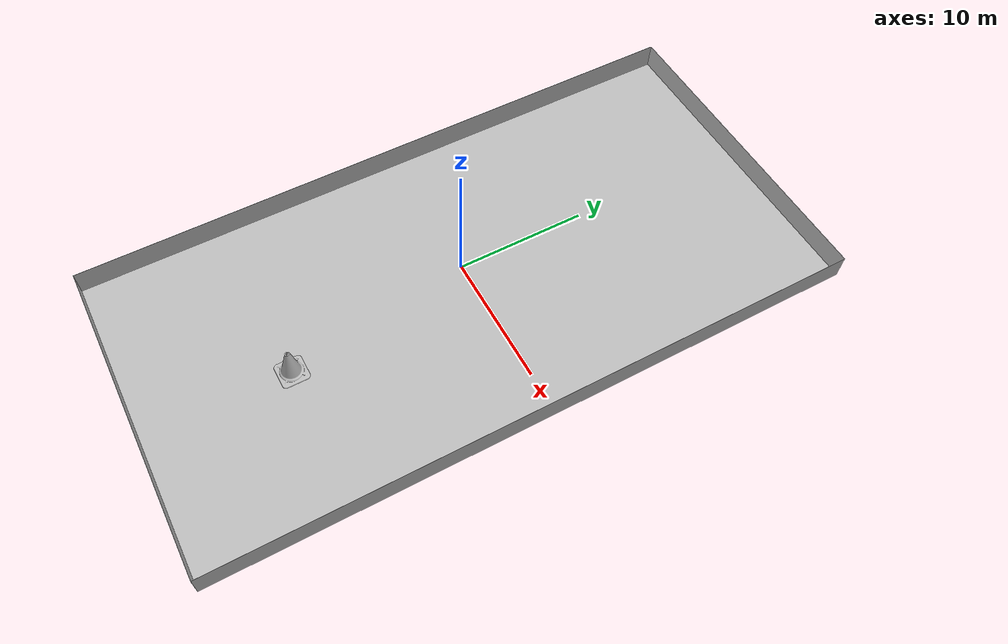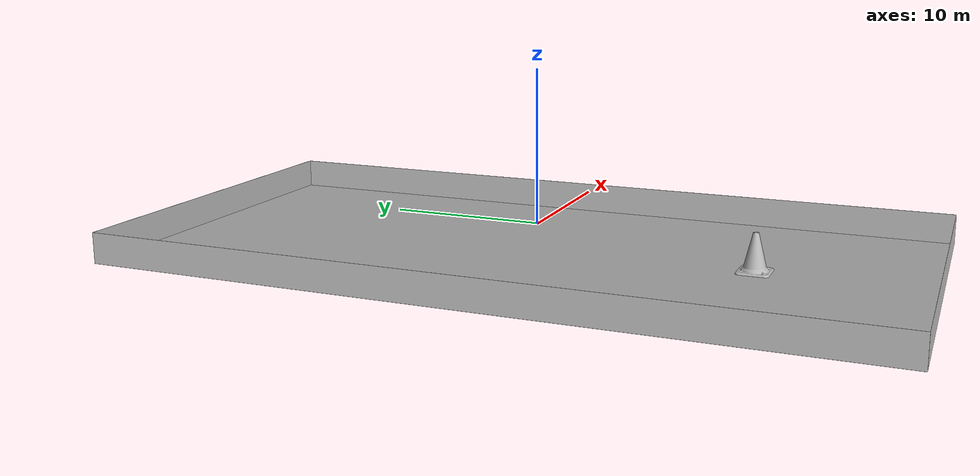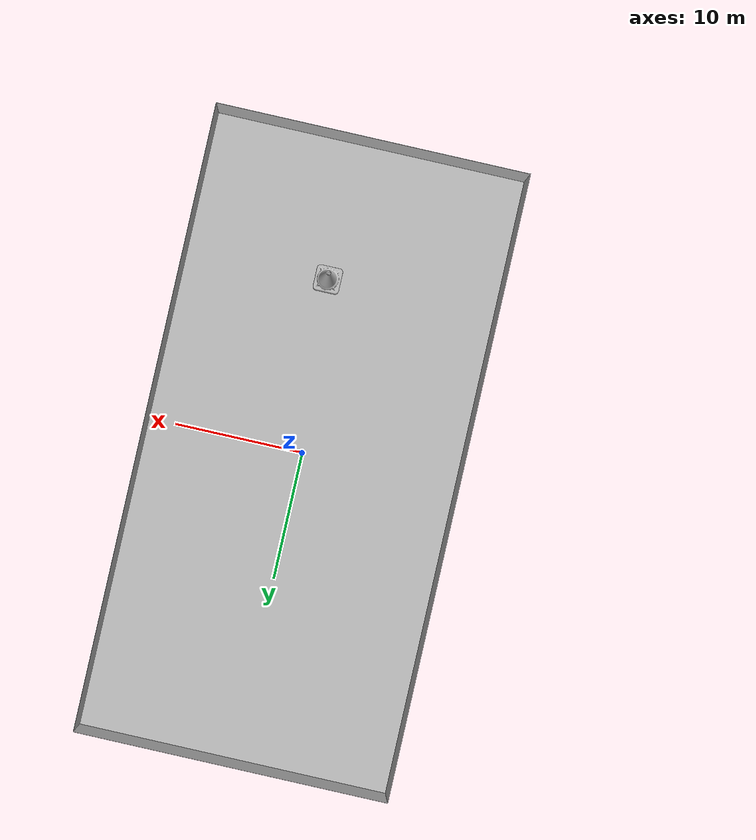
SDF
<sdf version="1.6">
 <world name="swimming_pool">
  <physics name="default_physics" default="true" type="ode">
   <max_step_size>0.002</max_step_size>
   <real_time_factor>1</real_time_factor>
   <real_time_update_rate>500</real_time_update_rate>
  </physics>
  <scene>
   <ambient>0.01 0.01 0.01 1.0</ambient>
   <sky><clouds><speed>12</speed></clouds></sky>
   <shadows>1</shadows>
  </scene>
  <light type="directional" name="sun1">
   <pose>20 0 100 0 0 0</pose>
   <diffuse>1 1 1 1</diffuse>
   <specular>1 1 1 1</specular>
   <direction>0.3 0.3 -1</direction>
   <cast_shadows>false</cast_shadows>
  </light>
  <light type="directional" name="sun_diffuse">
   <pose>-20 0 -100 0 0 0</pose>
   <diffuse>0.46 0.46 0.46 1</diffuse>
   <specular>0 0 0 1</specular>
   <direction>-0.3 -0.3 -1</direction>
   <cast_shadows>false</cast_shadows>
  </light>
  <light name="q_gate_focus_1" type="point">
   <pose>16.343 -16.9786 1 0 -0 0</pose>
   <diffuse>0.5 0.5 0.5 1</diffuse>
   <specular>0.1 0.1 0.1 1</specular>
   <attenuation>
    <range>20</range>
    <constant>0.5</constant>
    <linear>0.01</linear>
    <quadratic>0.001</quadratic>
   </attenuation>
   <cast_shadows>0</cast_shadows>
   <direction>0 0 -1</direction>
  </light>
  <light name="q_gate_focus_2" type="point">
   <pose>10.5076 -15.5392 1 0 -0 0</pose>
   <diffuse>0.5 0.5 0.5 1</diffuse>
   <specular>0.1 0.1 0.1 1</specular>
   <attenuation>
    <range>20</range>
    <constant>0.5</constant>
    <linear>0.01</linear>
    <quadratic>0.001</quadratic>
   </attenuation>
   <cast_shadows>0</cast_shadows>
   <direction>0 0 -1</direction>
  </light>
  <light name="gate_focus_1" type="point">
   <pose>11.1512 9.32795 1 0 -0 0</pose>
   <diffuse>0.5 0.5 0.5 1</diffuse>
   <specular>0.1 0.1 0.1 1</specular>
   <attenuation>
    <range>20</range>
    <constant>0.5</constant>
    <linear>0.01</linear>
    <quadratic>0.001</quadratic>
   </attenuation>
   <cast_shadows>0</cast_shadows>
   <direction>0 0 -1</direction>
  </light>
  <light name="gate_focus_2" type="point">
   <pose>11.0884 8.42621 1 0 -0 0</pose>
   <diffuse>0.5 0.5 0.5 1</diffuse>
   <specular>0.1 0.1 0.1 1</specular>
   <attenuation>
    <range>20</range>
    <constant>0.5</constant>
    <linear>0.01</linear>
    <quadratic>0.001</quadratic>
   </attenuation>
   <cast_shadows>0</cast_shadows>
   <direction>0 0 -1</direction>
  </light>
  <light name="gate_focus_3" type="point">
   <pose>3.57644 5.66953 1 0 -0 0</pose>
   <diffuse>0.5 0.5 0.5 1</diffuse>
   <specular>0.1 0.1 0.1 1</specular>
   <attenuation>
    <range>20</range>
    <constant>0.5</constant>
    <linear>0.01</linear>
    <quadratic>0.001</quadratic>
   </attenuation>
   <cast_shadows>0</cast_shadows>
   <direction>0 0 -1</direction>
  </light>
  <light name="mat_focus_0" type="point">
   <pose>-13.0246 -1.13836 1 0 -0 0</pose>
   <diffuse>0.5 0.5 0.5 1</diffuse>
   <specular>0.1 0.1 0.1 1</specular>
   <attenuation>
    <range>20</range>
    <constant>0.5</constant>
    <linear>0.01</linear>
    <quadratic>0.001</quadratic>
   </attenuation>
   <cast_shadows>0</cast_shadows>
   <direction>0 0 -1</direction>
  </light>
  <light name="mat_focus_1" type="point">
   <pose>-13.2723 -1.55147 1 0 -0 0</pose>
   <diffuse>0.5 0.5 0.5 1</diffuse>
   <specular>0.1 0.1 0.1 1</specular>
   <attenuation>
    <range>20</range>
    <constant>0.5</constant>
    <linear>0.01</linear>
    <quadratic>0.001</quadratic>
   </attenuation>
   <cast_shadows>0</cast_shadows>
   <direction>0 0 -1</direction>
  </light>
  <light name="mat_focus_2" type="point">
   <pose>-12.6848 1.07085 1 0 -0 0</pose>
   <diffuse>0.5 0.5 0.5 1</diffuse>
   <specular>0.1 0.1 0.1 1</specular>
   <attenuation>
    <range>20</range>
    <constant>0.5</constant>
    <linear>0.01</linear>
    <quadratic>0.001</quadratic>
   </attenuation>
   <cast_shadows>0</cast_shadows>
   <direction>0 0 -1</direction>
  </light>
  <include><uri>model://swimming_pool</uri></include>
  <include><uri>model://traffic_cone</uri><pose>0 -15 -2 0 0 0</pose></include>
  <plugin name="freefloating_gazebo_fluid" filename="libfreefloating_gazebo_fluid.so">
   <descriptionParam>robot_description</descriptionParam>
   <fluidTopic>current</fluidTopic>
   <alwaysOn>true</alwaysOn>
   <surface>0 0 0</surface>
   <updateRate>.001</updateRate>
  </plugin>
 </world>
</sdf>

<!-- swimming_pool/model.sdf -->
<sdf version="1.6">
    <model name='swimming_pool'>
      <static>1</static>
      <link name='swimming_pool_base'>
        <visual name='pool_floor'>
          <cast_shadows>1</cast_shadows>
          <pose frame=''>0 0 -2.01 0 -0 0</pose>
          <geometry>
            <box>
              <size>25 50 0.01</size>
            </box>
          </geometry>
          <material>
            <script>
              <uri>file://models/swimming_pool/materials/scripts/swimming_pool.material</uri>
              <name>swimming_pool/floor_sun</name>
            </script>
            <emissive>0.6 0.6 0.6 1</emissive>
          </material>
        </visual>
        <collision name='pool_floor'>
          <pose frame=''>0 0 -2.01 0 -0 0</pose>
          <geometry>
            <box>
              <size>25 50 0.01</size>
            </box>
          </geometry>
          <max_contacts>1000</max_contacts>
          <surface>
            <contact>
              <ode/>
            </contact>
            <bounce/>
            <friction>
              <torsional>
                <ode/>
              </torsional>
              <ode/>
            </friction>
          </surface>
        </collision>
       <self_collide>0</self_collide>
        <enable_wind>0</enable_wind>
        <kinematic>0</kinematic>
      </link>

      <link name='north_link'>
		<visual name='north'>
			<pose>12.5 0 -1 0 -1.57079 0</pose>
          <geometry>
            <box>
              <size>2.01 50 0.01</size>
            </box>
          </geometry>
          <material>
            <script>
              <uri>file://models/swimming_pool/materials/scripts/swimming_pool.material</uri>
              <name>swimming_pool/wall</name>
            </script>
            <emissive>0.6 0.6 0.6 1</emissive>
          </material>
         </visual>
          <collision name='north'>
			  <pose>12.5 0 -1 0 -1.57079 0</pose>
          <geometry>
            <box>
              <size>2.01 50 0.01</size>
            </box>
          </geometry>
          <max_contacts>40</max_contacts>
          <surface>
            <contact>
              <ode/>
            </contact>
            <bounce/>
            <friction>
              <torsional>
                <ode/>
              </torsional>
              <ode/>
            </friction>
          </surface>
        </collision>
          <self_collide>0</self_collide>
          <enable_wind>0</enable_wind>
          <kinematic>0</kinematic>
        </link>
      <joint type="fixed" name="north_link_joint">
        <child>north_link</child>
        <parent>swimming_pool_base</parent>
      </joint>

      <link name='south_link'>
		<visual name='south'>
			<pose>-12.5 0 -1 0 -1.57079 0</pose>
          <geometry>
            <box>
              <size>2.01 50 0.01</size>
            </box>
          </geometry>
          <material>
            <script>
              <uri>file://models/swimming_pool/materials/scripts/swimming_pool.material</uri>
              <name>swimming_pool/wall</name>
            </script>
            <emissive>0.6 0.6 0.6 1</emissive>
          </material>
         </visual>
          <collision name='south'>
			  <pose>-12.5 0 -1 0 -1.57079 0</pose>
          <geometry>
            <box>
              <size>2.01 50 0.01</size>
            </box>
          </geometry>
          <max_contacts>40</max_contacts>
          <surface>
            <contact>
              <ode/>
            </contact>
            <bounce/>
            <friction>
              <torsional>
                <ode/>
              </torsional>
              <ode/>
            </friction>
          </surface>
        </collision>
          <self_collide>0</self_collide>
          <enable_wind>0</enable_wind>
          <kinematic>0</kinematic>
        </link>
      <joint type="fixed" name="south_link_joint">
        <child>south_link</child>
        <parent>swimming_pool_base</parent>
      </joint>

      <link name='east_link'>
		<visual name='east'>
		 <pose>0 25 -1 -1.5708 0 0</pose>
          <geometry>
            <box>
              <size>25 2.01 0.01</size>
            </box>
          </geometry>
          <material>
            <script>
              <uri>file://models/swimming_pool/materials/scripts/swimming_pool.material</uri>
              <name>swimming_pool/wall</name>
            </script>
            <emissive>0.6 0.6 0.6 1</emissive>
          </material>
         </visual>
          <collision name='east'>
		  <pose>0 25 -1 -1.5708 0 0</pose>
          <geometry>
            <box>
              <size>25 2.01 0.01</size>
            </box>
          </geometry>
          <max_contacts>40</max_contacts>
          <surface>
            <contact>
              <ode/>
            </contact>
            <bounce/>
            <friction>
              <torsional>
                <ode/>
              </torsional>
              <ode/>
            </friction>
          </surface>
        </collision>
          <self_collide>0</self_collide>
          <enable_wind>0</enable_wind>
          <kinematic>0</kinematic>
        </link>
      <joint type="fixed" name="east_link_joint">
        <child>east_link</child>
        <parent>swimming_pool_base</parent>
      </joint>

      <link name='west_link'>
		<visual name='west'>
		 <pose>0 -25 -1 -1.5708 0 0</pose>
          <geometry>
            <box>
              <size>25 2.01 0.01</size>
            </box>
          </geometry>
          <material>
            <script>
              <uri>file://models/swimming_pool/materials/scripts/swimming_pool.material</uri>
              <name>swimming_pool/wall</name>
            </script>
            <emissive>0.6 0.6 0.6 1</emissive>
          </material>
         </visual>
          <collision name='west'>
		  <pose>0 -25 -1 -1.5708 0 0</pose>
          <geometry>
            <box>
              <size>25 2.01 0.01</size>
            </box>
          </geometry>
          <max_contacts>40</max_contacts>
          <surface>
            <contact>
              <ode/>
            </contact>
            <bounce/>
            <friction>
              <torsional>
                <ode/>
              </torsional>
              <ode/>
            </friction>
          </surface>
        </collision>
          <self_collide>0</self_collide>
          <enable_wind>0</enable_wind>
          <kinematic>0</kinematic>
        </link>
      <joint type="fixed" name="west_link_joint">
        <child>west_link</child>
        <parent>swimming_pool_base</parent>
      </joint>
      <pose frame=''>0 0 0 0 -0 0</pose>
    </model>
</sdf>

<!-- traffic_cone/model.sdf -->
<sdf version="1.5">
  <model name="traffic_cone">
    <static>true</static>
    <link name="link">
      <collision name="collision">
        <pose>0 0 0 0 0 0</pose>
        <geometry>
          <mesh>
            <uri>model://traffic_cone/meshes/traffic_cone.stl</uri>
            <scale>0.01 0.01 0.01</scale>
          </mesh>
        </geometry>
      </collision>

      <visual name="visual">
        <cast_shadows>false</cast_shadows>
        <pose>0 0 0 0 0 0</pose>
        <geometry>
          <mesh>
            <uri>model://traffic_cone/meshes/traffic_cone.stl</uri>
            <scale>0.05 0.05 0.05</scale>
          </mesh>
        </geometry>
      </visual>
    </link>
  </model>
</sdf>
